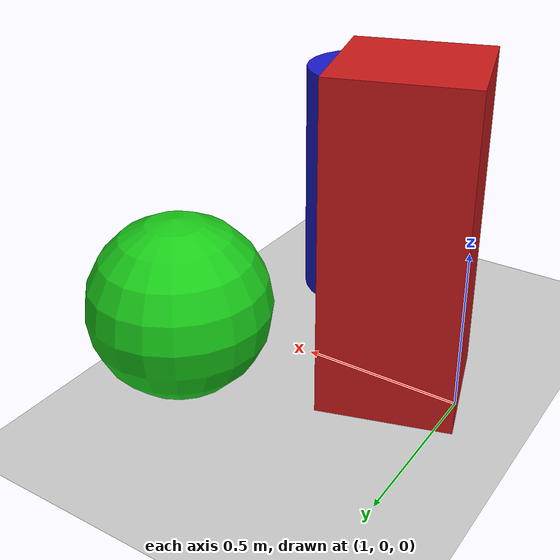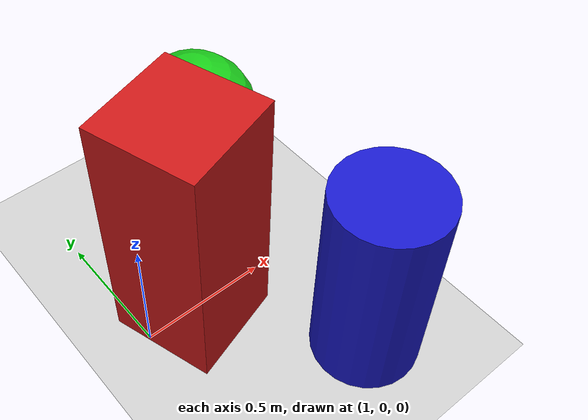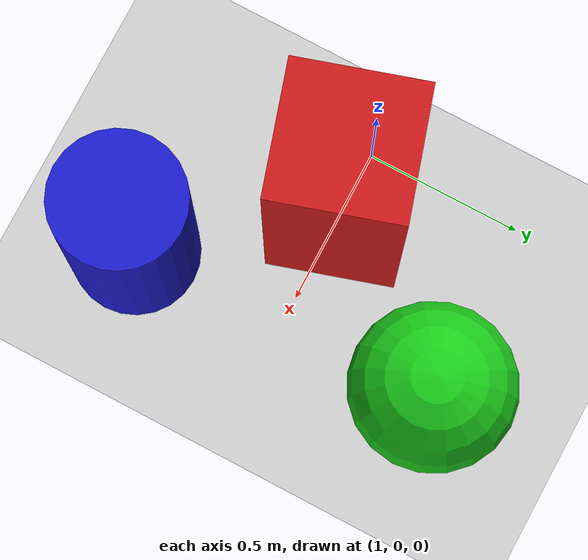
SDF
<?xml version="1.0" ?>
<!-- Demo scene for the simulated D435i: ground plane plus a few colored
     obstacles 1-2 m in front of the camera (camera spawns at x=0, facing +x). -->
<sdf version="1.6">
  <world name="cos_realsense">

    <include>
      <uri>model://sun</uri>
    </include>

    <include>
      <uri>model://ground_plane</uri>
    </include>

    <model name="red_box">
      <pose>1.2 0.0 0.5 0 0 0.3</pose>
      <static>true</static>
      <link name="link">
        <collision name="collision">
          <geometry><box><size>0.4 0.4 1.0</size></box></geometry>
        </collision>
        <visual name="visual">
          <geometry><box><size>0.4 0.4 1.0</size></box></geometry>
          <material>
            <ambient>0.8 0.1 0.1 1</ambient>
            <diffuse>0.8 0.1 0.1 1</diffuse>
          </material>
        </visual>
      </link>
    </model>

    <model name="green_sphere">
      <pose>1.6 0.5 0.4 0 0 0</pose>
      <static>true</static>
      <link name="link">
        <collision name="collision">
          <geometry><sphere><radius>0.25</radius></sphere></geometry>
        </collision>
        <visual name="visual">
          <geometry><sphere><radius>0.25</radius></sphere></geometry>
          <material>
            <ambient>0.1 0.8 0.1 1</ambient>
            <diffuse>0.1 0.8 0.1 1</diffuse>
          </material>
        </visual>
      </link>
    </model>

    <model name="blue_cylinder">
      <pose>1.6 -0.5 0.4 0 0 0</pose>
      <static>true</static>
      <link name="link">
        <collision name="collision">
          <geometry><cylinder><radius>0.2</radius><length>0.8</length></cylinder></geometry>
        </collision>
        <visual name="visual">
          <geometry><cylinder><radius>0.2</radius><length>0.8</length></cylinder></geometry>
          <material>
            <ambient>0.1 0.1 0.8 1</ambient>
            <diffuse>0.1 0.1 0.8 1</diffuse>
          </material>
        </visual>
      </link>
    </model>

  </world>
</sdf>
